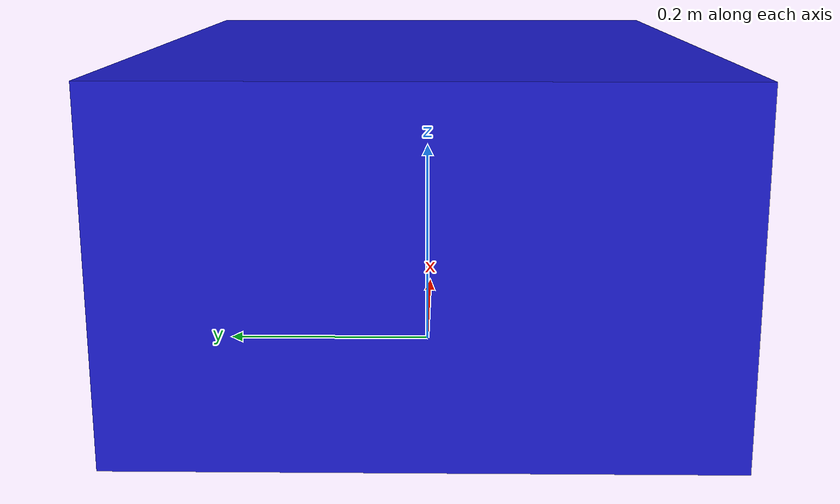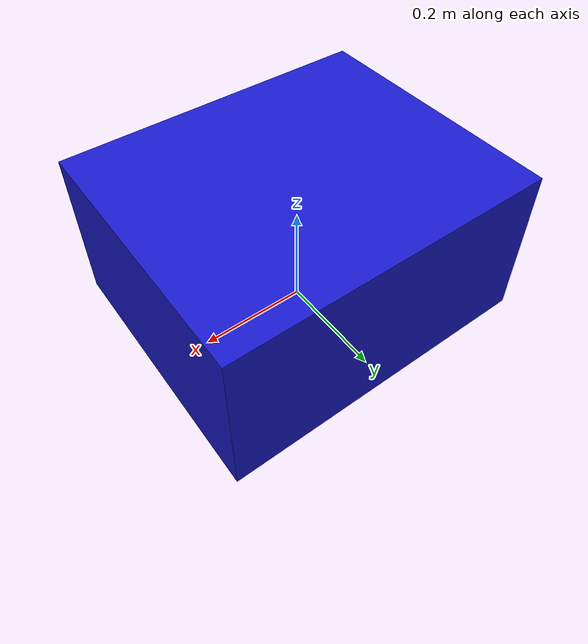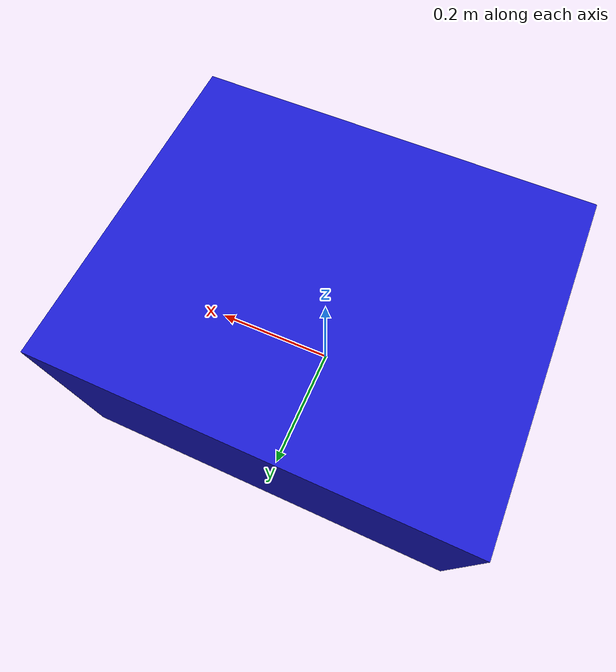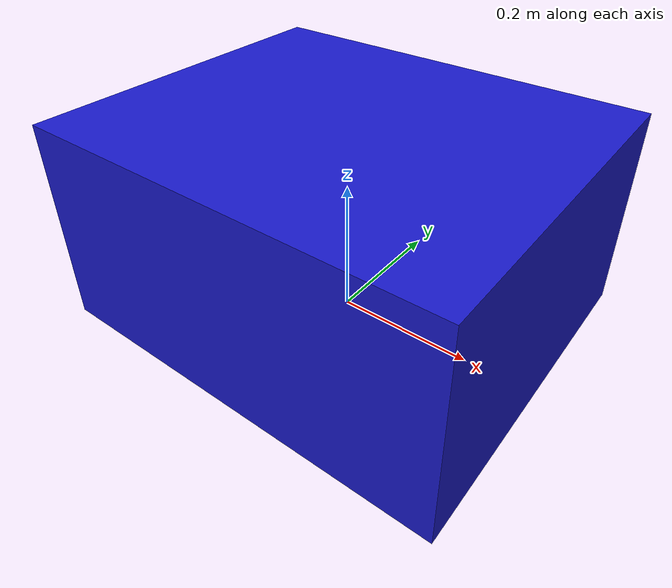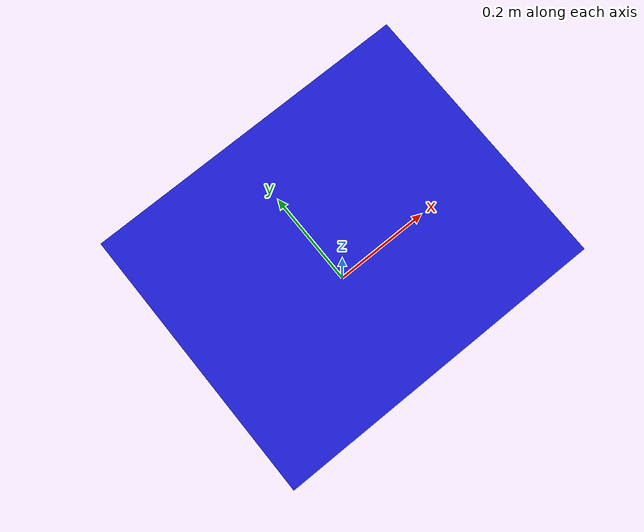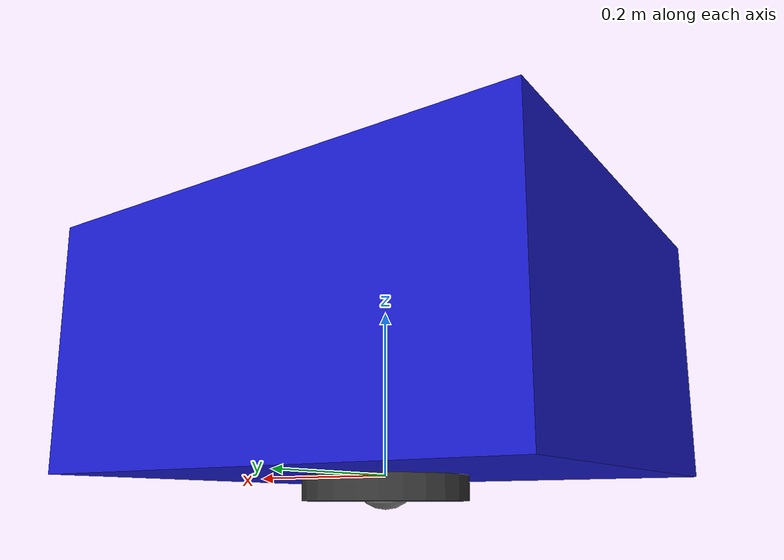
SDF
<?xml version="1.0" ?>
<sdf version="1.6">
  <model name="cleaning_robot">
    <!-- Base chassis                                                       -->
    <link name="base_link">
      <inertial>
        <mass>15.0</mass>
        <inertia>
          <ixx>0.8</ixx><ixy>0.0</ixy><ixz>0.0</ixz>
          <iyy>1.2</iyy><iyz>0.0</iyz>
          <izz>1.0</izz>
        </inertia>
        <pose>0 0 0.15 0 0 0</pose>
      </inertial>
      <collision name="base_collision">
        <geometry><box><size>0.6 0.5 0.3</size></box></geometry>
        <pose>0 0 0.15 0 0 0</pose>
      </collision>
      <visual name="base_visual">
        <geometry><box><size>0.6 0.5 0.3</size></box></geometry>
        <pose>0 0 0.15 0 0 0</pose>
        <material><ambient>0.1 0.1 0.8 1.0</ambient></material>
      </visual>
    </link>

    <!-- Wheels                                                             -->
    <!-- Left wheel -->
    <link name="wheel_left">
      <inertial>
        <mass>0.8</mass>
        <inertia><ixx>0.002</ixx><ixy>0</ixy><ixz>0</ixz><iyy>0.002</iyy><iyz>0</iyz><izz>0.004</izz></inertia>
      </inertial>
      <collision name="collision">
        <geometry><cylinder><radius>0.1</radius><length>0.06</length></cylinder></geometry>
      </collision>
      <visual name="visual">
        <geometry><cylinder><radius>0.1</radius><length>0.06</length></cylinder></geometry>
        <material><ambient>0.2 0.2 0.2 1.0</ambient></material>
      </visual>
    </link>

    <!-- Right wheel -->
    <link name="wheel_right">
      <inertial>
        <mass>0.8</mass>
        <inertia><ixx>0.002</ixx><ixy>0</ixy><ixz>0</ixz><iyy>0.002</iyy><iyz>0</iyz><izz>0.004</izz></inertia>
      </inertial>
      <collision name="collision">
        <geometry><cylinder><radius>0.1</radius><length>0.06</length></cylinder></geometry>
      </collision>
      <visual name="visual">
        <geometry><cylinder><radius>0.1</radius><length>0.06</length></cylinder></geometry>
        <material><ambient>0.2 0.2 0.2 1.0</ambient></material>
      </visual>
    </link>

    <!-- Left wheel joint (revolute, driven) -->
    <joint name="wheel_left_joint" type="revolute">
      <parent>base_link</parent>
      <child>wheel_left</child>
      <axis><xyz>0 1 0</xyz></axis>
      <pose>0 0.28 0.1 0 0 0</pose>
    </joint>

    <!-- Right wheel joint (revolute, driven) -->
    <joint name="wheel_right_joint" type="revolute">
      <parent>base_link</parent>
      <child>wheel_right</child>
      <axis><xyz>0 1 0</xyz></axis>
      <pose>0 -0.28 0.1 0 0 0</pose>
    </joint>

    <!-- Caster wheel (front, passive) -->
    <link name="caster_front">
      <inertial>
        <mass>0.3</mass>
        <inertia><ixx>0.001</ixx><ixy>0</ixy><ixz>0</ixz><iyy>0.001</iyy><iyz>0</iyz><izz>0.001</izz></inertia>
      </inertial>
      <collision name="collision">
        <geometry><sphere><radius>0.04</radius></sphere></geometry>
      </collision>
      <visual name="visual">
        <geometry><sphere><radius>0.04</radius></sphere></geometry>
        <material><ambient>0.5 0.5 0.5 1.0</ambient></material>
      </visual>
    </link>

    <joint name="caster_front_joint" type="ball">
      <parent>base_link</parent>
      <child>caster_front</child>
      <pose>0.25 0 0 0 0 0</pose>
    </joint>

    <!-- LiDAR sensor                                                       -->
    <link name="lidar_link">
      <inertial><mass>0.01</mass><inertia><ixx>1e-5</ixx><ixy>0</ixy><ixz>0</ixz><iyy>1e-5</iyy><iyz>0</iyz><izz>1e-5</izz></inertia></inertial>
      <visual name="visual">
        <geometry><cylinder><radius>0.06</radius><length>0.04</length></cylinder></geometry>
        <material><ambient>0.3 0.3 0.3 1.0</ambient></material>
      </visual>
      <sensor name="lidar" type="ray">
        <pose>0 0 0 0 0 0</pose>
        <ray>
          <scan>
            <horizontal>
              <samples>360</samples>
              <resolution>1.0</resolution>
              <min_angle>-3.14159</min_angle>
              <max_angle>3.14159</max_angle>
            </horizontal>
          </scan>
          <range>
            <min>0.1</min>
            <max>30.0</max>
            <resolution>0.01</resolution>
          </range>
        </ray>
        <plugin name="gazebo_ros_lidar" filename="libgazebo_ros_ray_sensor.so">
          <ros><namespace>/cleaning_robot</namespace></ros>
          <topic>lidar/scan/pointcloud</topic>
          <frame_name>lidar_link</frame_name>
        </plugin>
      </sensor>
    </link>

    <joint name="lidar_joint" type="fixed">
      <parent>base_link</parent>
      <child>lidar_link</child>
      <pose>0.1 0 0.4 0 0 0</pose>
    </joint>

    <!-- Camera sensor                                                      -->
    <link name="camera_link">
      <inertial><mass>0.005</mass><inertia><ixx>1e-5</ixx><ixy>0</ixy><ixz>0</ixz><iyy>1e-5</iyy><iyz>0</iyz><izz>1e-5</izz></inertia></inertial>
      <visual name="visual">
        <geometry><box><size>0.04 0.03 0.02</size></box></geometry>
        <material><ambient>0.1 0.1 0.1 1.0</ambient></material>
      </visual>
      <sensor name="camera" type="camera">
        <camera>
          <horizontal_fov>1.047</horizontal_fov>
          <image><width>1280</width><height>720</height></image>
          <clip><near>0.1</near><far>100</far></clip>
        </camera>
        <plugin name="gazebo_ros_camera" filename="libgazebo_ros_camera.so">
          <ros><namespace>/cleaning_robot</namespace></ros>
          <topic>vision/detect/image_raw</topic>
          <frame_name>camera_link</frame_name>
        </plugin>
      </sensor>
    </link>

    <joint name="camera_joint" type="fixed">
      <parent>base_link</parent>
      <child>camera_link</child>
      <pose>0.2 0 0.5 0 0.2 0</pose>
    </joint>

    <!-- IMU sensor                                                         -->
    <link name="imu_link">
      <inertial><mass>0.001</mass><inertia><ixx>1e-6</ixx><ixy>0</ixy><ixz>0</ixz><iyy>1e-6</iyy><iyz>0</iyz><izz>1e-6</izz></inertia></inertial>
      <sensor name="imu" type="imu">
        <plugin name="gazebo_ros_imu" filename="libgazebo_ros_imu_sensor.so">
          <ros><namespace>/cleaning_robot</namespace></ros>
          <topic>sensor/imu/data</topic>
          <frame_name>imu_link</frame_name>
        </plugin>
      </sensor>
    </link>

    <joint name="imu_joint" type="fixed">
      <parent>base_link</parent>
      <child>imu_link</child>
      <pose>0 0 0.1 0 0 0</pose>
    </joint>

    <!-- Differential drive plugin                                          -->
    <plugin name="diff_drive" filename="libgazebo_ros_diff_drive.so">
      <ros><namespace>/cleaning_robot</namespace></ros>
      <left_joint>wheel_left_joint</left_joint>
      <right_joint>wheel_right_joint</right_joint>
      <wheel_separation>0.56</wheel_separation>
      <wheel_diameter>0.2</wheel_diameter>
      <max_wheel_torque>20</max_wheel_torque>
      <max_wheel_acceleration>5</max_wheel_acceleration>
      <command_topic>motion/cmd_vel</command_topic>
      <odometry_topic>motion/odom</odometry_topic>
      <odometry_frame>odom</odometry_frame>
      <robot_base_frame>base_link</robot_base_frame>
      <publish_odom>true</publish_odom>
      <publish_odom_tf>true</publish_odom_tf>
      <publish_wheel_tf>false</publish_wheel_tf>
    </plugin>

  </model>
</sdf>
